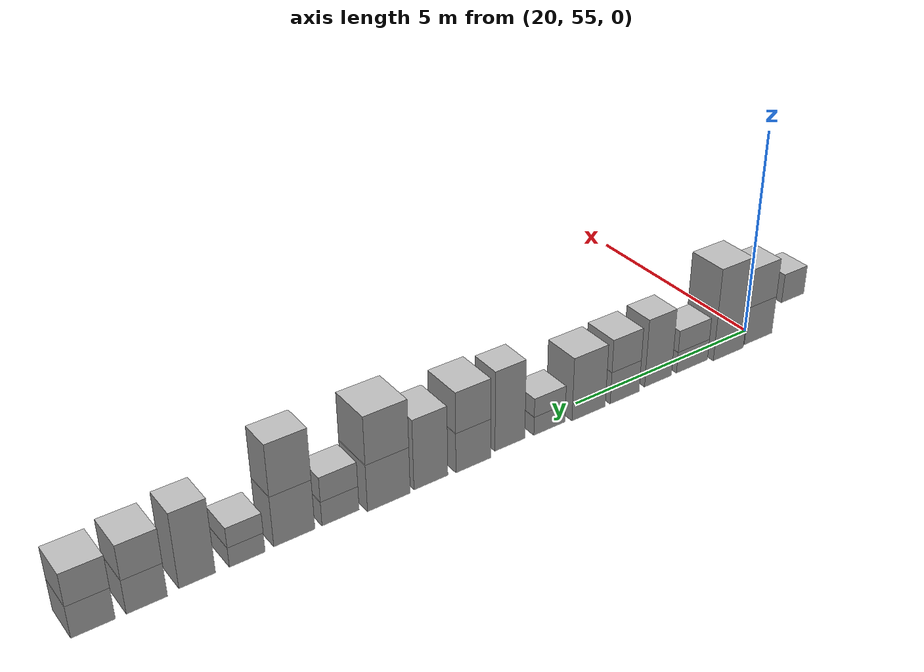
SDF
<sdf version="1.5">
 <world name="default">
  <model name="ground_plane">
   <static>true</static>
   <link name="link">
    <collision name="collision">
     <geometry><plane><normal>0 0 1</normal><size>250 250</size></plane></geometry>
     <surface><friction><ode><mu>1</mu><mu2>1</mu2></ode></friction></surface>
    </collision>
    <visual name="grass">
     <cast_shadows>false</cast_shadows>
     <geometry><mesh><uri>file://grass_plane/meshes/grass_plane.dae</uri></mesh></geometry>
    </visual>
   </link>
  </model>
  <model name="Cardboard_box_top_604">
   <link name="link_0">
    <pose>20 54 0.736954977097 0 0 0</pose>
    <inertial>
     <mass>1</mass>
     <inertia>
      <ixx>0.166667</ixx>
      <ixy>0</ixy>
      <ixz>0</ixz>
      <iyy>0.166667</iyy>
      <iyz>0</iyz>
      <izz>0.166667</izz>
     </inertia>
    </inertial>
    <collision name="collision">
     <geometry>
      <mesh>
       <uri>model://Cardboard_box/meshes/cardboard_box.dae</uri>
       <scale>1.96607956529 1.80147927238 1.84238744274</scale>
      </mesh>
     </geometry>
    </collision>
    <visual name="visual">
     <geometry>
      <mesh>
       <uri>model://Cardboard_box/meshes/cardboard_box.dae</uri>
       <scale>1.96607956529 1.80147927238 1.84238744274</scale>
      </mesh>
     </geometry>
    </visual>
   </link>
   <static>1</static>
  </model>
  <model name="Cardboard_box_605">
   <link name="link_0">
    <pose>20 55 0 0 0 0</pose>
    <inertial>
     <mass>1</mass>
     <inertia>
      <ixx>0.166667</ixx>
      <ixy>0</ixy>
      <ixz>0</ixz>
      <iyy>0.166667</iyy>
      <iyz>0</iyz>
      <izz>0.166667</izz>
     </inertia>
    </inertial>
    <collision name="collision">
     <geometry>
      <mesh>
       <uri>model://Cardboard_box/meshes/cardboard_box.dae</uri>
       <scale>2.01632398014 2.19879689964 2.45306096804</scale>
      </mesh>
     </geometry>
    </collision>
    <visual name="visual">
     <geometry>
      <mesh>
       <uri>model://Cardboard_box/meshes/cardboard_box.dae</uri>
       <scale>2.01632398014 2.19879689964 2.45306096804</scale>
      </mesh>
     </geometry>
    </visual>
   </link>
   <static>1</static>
  </model>
  <model name="Cardboard_box_top_605">
   <link name="link_0">
    <pose>20 55 0.981224387218 0 0 0</pose>
    <inertial>
     <mass>1</mass>
     <inertia>
      <ixx>0.166667</ixx>
      <ixy>0</ixy>
      <ixz>0</ixz>
      <iyy>0.166667</iyy>
      <iyz>0</iyz>
      <izz>0.166667</izz>
     </inertia>
    </inertial>
    <collision name="collision">
     <geometry>
      <mesh>
       <uri>model://Cardboard_box/meshes/cardboard_box.dae</uri>
       <scale>2.01632398014 2.19879689964 2.45306096804</scale>
      </mesh>
     </geometry>
    </collision>
    <visual name="visual">
     <geometry>
      <mesh>
       <uri>model://Cardboard_box/meshes/cardboard_box.dae</uri>
       <scale>2.01632398014 2.19879689964 2.45306096804</scale>
      </mesh>
     </geometry>
    </visual>
   </link>
   <static>1</static>
  </model>
  <model name="Cardboard_box_606">
   <link name="link_0">
    <pose>20 56 0 0 0 0</pose>
    <inertial>
     <mass>1</mass>
     <inertia>
      <ixx>0.166667</ixx>
      <ixy>0</ixy>
      <ixz>0</ixz>
      <iyy>0.166667</iyy>
      <iyz>0</iyz>
      <izz>0.166667</izz>
     </inertia>
    </inertial>
    <collision name="collision">
     <geometry>
      <mesh>
       <uri>model://Cardboard_box/meshes/cardboard_box.dae</uri>
       <scale>2.39003234751 2.32016117571 5.90559905678</scale>
      </mesh>
     </geometry>
    </collision>
    <visual name="visual">
     <geometry>
      <mesh>
       <uri>model://Cardboard_box/meshes/cardboard_box.dae</uri>
       <scale>2.39003234751 2.32016117571 5.90559905678</scale>
      </mesh>
     </geometry>
    </visual>
   </link>
   <static>1</static>
  </model>
  <model name="Cardboard_box_607">
   <link name="link_0">
    <pose>20 57 0 0 0 0</pose>
    <inertial>
     <mass>1</mass>
     <inertia>
      <ixx>0.166667</ixx>
      <ixy>0</ixy>
      <ixz>0</ixz>
      <iyy>0.166667</iyy>
      <iyz>0</iyz>
      <izz>0.166667</izz>
     </inertia>
    </inertial>
    <collision name="collision">
     <geometry>
      <mesh>
       <uri>model://Cardboard_box/meshes/cardboard_box.dae</uri>
       <scale>1.84360082356 2.33156305239 1.36607964084</scale>
      </mesh>
     </geometry>
    </collision>
    <visual name="visual">
     <geometry>
      <mesh>
       <uri>model://Cardboard_box/meshes/cardboard_box.dae</uri>
       <scale>1.84360082356 2.33156305239 1.36607964084</scale>
      </mesh>
     </geometry>
    </visual>
   </link>
   <static>1</static>
  </model>
  <model name="Cardboard_box_top_607">
   <link name="link_0">
    <pose>20 57 0.546431856337 0 0 0</pose>
    <inertial>
     <mass>1</mass>
     <inertia>
      <ixx>0.166667</ixx>
      <ixy>0</ixy>
      <ixz>0</ixz>
      <iyy>0.166667</iyy>
      <iyz>0</iyz>
      <izz>0.166667</izz>
     </inertia>
    </inertial>
    <collision name="collision">
     <geometry>
      <mesh>
       <uri>model://Cardboard_box/meshes/cardboard_box.dae</uri>
       <scale>1.84360082356 2.33156305239 1.36607964084</scale>
      </mesh>
     </geometry>
    </collision>
    <visual name="visual">
     <geometry>
      <mesh>
       <uri>model://Cardboard_box/meshes/cardboard_box.dae</uri>
       <scale>1.84360082356 2.33156305239 1.36607964084</scale>
      </mesh>
     </geometry>
    </visual>
   </link>
   <static>1</static>
  </model>
  <model name="Cardboard_box_608">
   <link name="link_0">
    <pose>20 58 0 0 0 0</pose>
    <inertial>
     <mass>1</mass>
     <inertia>
      <ixx>0.166667</ixx>
      <ixy>0</ixy>
      <ixz>0</ixz>
      <iyy>0.166667</iyy>
      <iyz>0</iyz>
      <izz>0.166667</izz>
     </inertia>
    </inertial>
    <collision name="collision">
     <geometry>
      <mesh>
       <uri>model://Cardboard_box/meshes/cardboard_box.dae</uri>
       <scale>1.85496776008 1.95800882795 4.29942076885</scale>
      </mesh>
     </geometry>
    </collision>
    <visual name="visual">
     <geometry>
      <mesh>
       <uri>model://Cardboard_box/meshes/cardboard_box.dae</uri>
       <scale>1.85496776008 1.95800882795 4.29942076885</scale>
      </mesh>
     </geometry>
    </visual>
   </link>
   <static>1</static>
  </model>
  <model name="Cardboard_box_609">
   <link name="link_0">
    <pose>20 59 0 0 0 0</pose>
    <inertial>
     <mass>1</mass>
     <inertia>
      <ixx>0.166667</ixx>
      <ixy>0</ixy>
      <ixz>0</ixz>
      <iyy>0.166667</iyy>
      <iyz>0</iyz>
      <izz>0.166667</izz>
     </inertia>
    </inertial>
    <collision name="collision">
     <geometry>
      <mesh>
       <uri>model://Cardboard_box/meshes/cardboard_box.dae</uri>
       <scale>2.14618479516 2.04663500914 2.02100210984</scale>
      </mesh>
     </geometry>
    </collision>
    <visual name="visual">
     <geometry>
      <mesh>
       <uri>model://Cardboard_box/meshes/cardboard_box.dae</uri>
       <scale>2.14618479516 2.04663500914 2.02100210984</scale>
      </mesh>
     </geometry>
    </visual>
   </link>
   <static>1</static>
  </model>
  <model name="Cardboard_box_top_609">
   <link name="link_0">
    <pose>20 59 0.808400843937 0 0 0</pose>
    <inertial>
     <mass>1</mass>
     <inertia>
      <ixx>0.166667</ixx>
      <ixy>0</ixy>
      <ixz>0</ixz>
      <iyy>0.166667</iyy>
      <iyz>0</iyz>
      <izz>0.166667</izz>
     </inertia>
    </inertial>
    <collision name="collision">
     <geometry>
      <mesh>
       <uri>model://Cardboard_box/meshes/cardboard_box.dae</uri>
       <scale>2.14618479516 2.04663500914 2.02100210984</scale>
      </mesh>
     </geometry>
    </collision>
    <visual name="visual">
     <geometry>
      <mesh>
       <uri>model://Cardboard_box/meshes/cardboard_box.dae</uri>
       <scale>2.14618479516 2.04663500914 2.02100210984</scale>
      </mesh>
     </geometry>
    </visual>
   </link>
   <static>1</static>
  </model>
  <model name="Cardboard_box_610">
   <link name="link_0">
    <pose>20 60 0 0 0 0</pose>
    <inertial>
     <mass>1</mass>
     <inertia>
      <ixx>0.166667</ixx>
      <ixy>0</ixy>
      <ixz>0</ixz>
      <iyy>0.166667</iyy>
      <iyz>0</iyz>
      <izz>0.166667</izz>
     </inertia>
    </inertial>
    <collision name="collision">
     <geometry>
      <mesh>
       <uri>model://Cardboard_box/meshes/cardboard_box.dae</uri>
       <scale>2.19470734684 2.27012652009 3.93907148978</scale>
      </mesh>
     </geometry>
    </collision>
    <visual name="visual">
     <geometry>
      <mesh>
       <uri>model://Cardboard_box/meshes/cardboard_box.dae</uri>
       <scale>2.19470734684 2.27012652009 3.93907148978</scale>
      </mesh>
     </geometry>
    </visual>
   </link>
   <static>1</static>
  </model>
  <model name="Cardboard_box_611">
   <link name="link_0">
    <pose>20 61 0 0 0 0</pose>
    <inertial>
     <mass>1</mass>
     <inertia>
      <ixx>0.166667</ixx>
      <ixy>0</ixy>
      <ixz>0</ixz>
      <iyy>0.166667</iyy>
      <iyz>0</iyz>
      <izz>0.166667</izz>
     </inertia>
    </inertial>
    <collision name="collision">
     <geometry>
      <mesh>
       <uri>model://Cardboard_box/meshes/cardboard_box.dae</uri>
       <scale>1.90186253939 2.05237589071 1.14566352119</scale>
      </mesh>
     </geometry>
    </collision>
    <visual name="visual">
     <geometry>
      <mesh>
       <uri>model://Cardboard_box/meshes/cardboard_box.dae</uri>
       <scale>1.90186253939 2.05237589071 1.14566352119</scale>
      </mesh>
     </geometry>
    </visual>
   </link>
   <static>1</static>
  </model>
  <model name="Cardboard_box_top_611">
   <link name="link_0">
    <pose>20 61 0.458265408477 0 0 0</pose>
    <inertial>
     <mass>1</mass>
     <inertia>
      <ixx>0.166667</ixx>
      <ixy>0</ixy>
      <ixz>0</ixz>
      <iyy>0.166667</iyy>
      <iyz>0</iyz>
      <izz>0.166667</izz>
     </inertia>
    </inertial>
    <collision name="collision">
     <geometry>
      <mesh>
       <uri>model://Cardboard_box/meshes/cardboard_box.dae</uri>
       <scale>1.90186253939 2.05237589071 1.14566352119</scale>
      </mesh>
     </geometry>
    </collision>
    <visual name="visual">
     <geometry>
      <mesh>
       <uri>model://Cardboard_box/meshes/cardboard_box.dae</uri>
       <scale>1.90186253939 2.05237589071 1.14566352119</scale>
      </mesh>
     </geometry>
    </visual>
   </link>
   <static>1</static>
  </model>
  <model name="Cardboard_box_612">
   <link name="link_0">
    <pose>20 62 0 0 0 0</pose>
    <inertial>
     <mass>1</mass>
     <inertia>
      <ixx>0.166667</ixx>
      <ixy>0</ixy>
      <ixz>0</ixz>
      <iyy>0.166667</iyy>
      <iyz>0</iyz>
      <izz>0.166667</izz>
     </inertia>
    </inertial>
    <collision name="collision">
     <geometry>
      <mesh>
       <uri>model://Cardboard_box/meshes/cardboard_box.dae</uri>
       <scale>1.76700883504 1.9027436537 4.8937249858</scale>
      </mesh>
     </geometry>
    </collision>
    <visual name="visual">
     <geometry>
      <mesh>
       <uri>model://Cardboard_box/meshes/cardboard_box.dae</uri>
       <scale>1.76700883504 1.9027436537 4.8937249858</scale>
      </mesh>
     </geometry>
    </visual>
   </link>
   <static>1</static>
  </model>
  <model name="Cardboard_box_613">
   <link name="link_0">
    <pose>20 63 0 0 0 0</pose>
    <inertial>
     <mass>1</mass>
     <inertia>
      <ixx>0.166667</ixx>
      <ixy>0</ixy>
      <ixz>0</ixz>
      <iyy>0.166667</iyy>
      <iyz>0</iyz>
      <izz>0.166667</izz>
     </inertia>
    </inertial>
    <collision name="collision">
     <geometry>
      <mesh>
       <uri>model://Cardboard_box/meshes/cardboard_box.dae</uri>
       <scale>2.40601959532 2.14132616024 2.43127423748</scale>
      </mesh>
     </geometry>
    </collision>
    <visual name="visual">
     <geometry>
      <mesh>
       <uri>model://Cardboard_box/meshes/cardboard_box.dae</uri>
       <scale>2.40601959532 2.14132616024 2.43127423748</scale>
      </mesh>
     </geometry>
    </visual>
   </link>
   <static>1</static>
  </model>
  <model name="Cardboard_box_top_613">
   <link name="link_0">
    <pose>20 63 0.97250969499 0 0 0</pose>
    <inertial>
     <mass>1</mass>
     <inertia>
      <ixx>0.166667</ixx>
      <ixy>0</ixy>
      <ixz>0</ixz>
      <iyy>0.166667</iyy>
      <iyz>0</iyz>
      <izz>0.166667</izz>
     </inertia>
    </inertial>
    <collision name="collision">
     <geometry>
      <mesh>
       <uri>model://Cardboard_box/meshes/cardboard_box.dae</uri>
       <scale>2.40601959532 2.14132616024 2.43127423748</scale>
      </mesh>
     </geometry>
    </collision>
    <visual name="visual">
     <geometry>
      <mesh>
       <uri>model://Cardboard_box/meshes/cardboard_box.dae</uri>
       <scale>2.40601959532 2.14132616024 2.43127423748</scale>
      </mesh>
     </geometry>
    </visual>
   </link>
   <static>1</static>
  </model>
  <model name="Cardboard_box_614">
   <link name="link_0">
    <pose>20 64 0 0 0 0</pose>
    <inertial>
     <mass>1</mass>
     <inertia>
      <ixx>0.166667</ixx>
      <ixy>0</ixy>
      <ixz>0</ixz>
      <iyy>0.166667</iyy>
      <iyz>0</iyz>
      <izz>0.166667</izz>
     </inertia>
    </inertial>
    <collision name="collision">
     <geometry>
      <mesh>
       <uri>model://Cardboard_box/meshes/cardboard_box.dae</uri>
       <scale>2.2519793611 2.01899430972 4.23079400214</scale>
      </mesh>
     </geometry>
    </collision>
    <visual name="visual">
     <geometry>
      <mesh>
       <uri>model://Cardboard_box/meshes/cardboard_box.dae</uri>
       <scale>2.2519793611 2.01899430972 4.23079400214</scale>
      </mesh>
     </geometry>
    </visual>
   </link>
   <static>1</static>
  </model>
  <model name="Cardboard_box_615">
   <link name="link_0">
    <pose>20 65 0 0 0 0</pose>
    <inertial>
     <mass>1</mass>
     <inertia>
      <ixx>0.166667</ixx>
      <ixy>0</ixy>
      <ixz>0</ixz>
      <iyy>0.166667</iyy>
      <iyz>0</iyz>
      <izz>0.166667</izz>
     </inertia>
    </inertial>
    <collision name="collision">
     <geometry>
      <mesh>
       <uri>model://Cardboard_box/meshes/cardboard_box.dae</uri>
       <scale>2.44667654949 2.45714902443 2.80874775185</scale>
      </mesh>
     </geometry>
    </collision>
    <visual name="visual">
     <geometry>
      <mesh>
       <uri>model://Cardboard_box/meshes/cardboard_box.dae</uri>
       <scale>2.44667654949 2.45714902443 2.80874775185</scale>
      </mesh>
     </geometry>
    </visual>
   </link>
   <static>1</static>
  </model>
  <model name="Cardboard_box_top_615">
   <link name="link_0">
    <pose>20 65 1.12349910074 0 0 0</pose>
    <inertial>
     <mass>1</mass>
     <inertia>
      <ixx>0.166667</ixx>
      <ixy>0</ixy>
      <ixz>0</ixz>
      <iyy>0.166667</iyy>
      <iyz>0</iyz>
      <izz>0.166667</izz>
     </inertia>
    </inertial>
    <collision name="collision">
     <geometry>
      <mesh>
       <uri>model://Cardboard_box/meshes/cardboard_box.dae</uri>
       <scale>2.44667654949 2.45714902443 2.80874775185</scale>
      </mesh>
     </geometry>
    </collision>
    <visual name="visual">
     <geometry>
      <mesh>
       <uri>model://Cardboard_box/meshes/cardboard_box.dae</uri>
       <scale>2.44667654949 2.45714902443 2.80874775185</scale>
      </mesh>
     </geometry>
    </visual>
   </link>
   <static>1</static>
  </model>
  <model name="Cardboard_box_616">
   <link name="link_0">
    <pose>20 66 0 0 0 0</pose>
    <inertial>
     <mass>1</mass>
     <inertia>
      <ixx>0.166667</ixx>
      <ixy>0</ixy>
      <ixz>0</ixz>
      <iyy>0.166667</iyy>
      <iyz>0</iyz>
      <izz>0.166667</izz>
     </inertia>
    </inertial>
    <collision name="collision">
     <geometry>
      <mesh>
       <uri>model://Cardboard_box/meshes/cardboard_box.dae</uri>
       <scale>1.74908755513 2.06319530047 1.44473320043</scale>
      </mesh>
     </geometry>
    </collision>
    <visual name="visual">
     <geometry>
      <mesh>
       <uri>model://Cardboard_box/meshes/cardboard_box.dae</uri>
       <scale>1.74908755513 2.06319530047 1.44473320043</scale>
      </mesh>
     </geometry>
    </visual>
   </link>
   <static>1</static>
  </model>
  <model name="Cardboard_box_top_616">
   <link name="link_0">
    <pose>20 66 0.57789328017 0 0 0</pose>
    <inertial>
     <mass>1</mass>
     <inertia>
      <ixx>0.166667</ixx>
      <ixy>0</ixy>
      <ixz>0</ixz>
      <iyy>0.166667</iyy>
      <iyz>0</iyz>
      <izz>0.166667</izz>
     </inertia>
    </inertial>
    <collision name="collision">
     <geometry>
      <mesh>
       <uri>model://Cardboard_box/meshes/cardboard_box.dae</uri>
       <scale>1.74908755513 2.06319530047 1.44473320043</scale>
      </mesh>
     </geometry>
    </collision>
    <visual name="visual">
     <geometry>
      <mesh>
       <uri>model://Cardboard_box/meshes/cardboard_box.dae</uri>
       <scale>1.74908755513 2.06319530047 1.44473320043</scale>
      </mesh>
     </geometry>
    </visual>
   </link>
   <static>1</static>
  </model>
  <model name="Cardboard_box_617">
   <link name="link_0">
    <pose>20 67 0 0 0 0</pose>
    <inertial>
     <mass>1</mass>
     <inertia>
      <ixx>0.166667</ixx>
      <ixy>0</ixy>
      <ixz>0</ixz>
      <iyy>0.166667</iyy>
      <iyz>0</iyz>
      <izz>0.166667</izz>
     </inertia>
    </inertial>
    <collision name="collision">
     <geometry>
      <mesh>
       <uri>model://Cardboard_box/meshes/cardboard_box.dae</uri>
       <scale>1.74489117357 2.20642668271 2.96500798855</scale>
      </mesh>
     </geometry>
    </collision>
    <visual name="visual">
     <geometry>
      <mesh>
       <uri>model://Cardboard_box/meshes/cardboard_box.dae</uri>
       <scale>1.74489117357 2.20642668271 2.96500798855</scale>
      </mesh>
     </geometry>
    </visual>
   </link>
   <static>1</static>
  </model>
  <model name="Cardboard_box_top_617">
   <link name="link_0">
    <pose>20 67 1.18600319542 0 0 0</pose>
    <inertial>
     <mass>1</mass>
     <inertia>
      <ixx>0.166667</ixx>
      <ixy>0</ixy>
      <ixz>0</ixz>
      <iyy>0.166667</iyy>
      <iyz>0</iyz>
      <izz>0.166667</izz>
     </inertia>
    </inertial>
    <collision name="collision">
     <geometry>
      <mesh>
       <uri>model://Cardboard_box/meshes/cardboard_box.dae</uri>
       <scale>1.74489117357 2.20642668271 2.96500798855</scale>
      </mesh>
     </geometry>
    </collision>
    <visual name="visual">
     <geometry>
      <mesh>
       <uri>model://Cardboard_box/meshes/cardboard_box.dae</uri>
       <scale>1.74489117357 2.20642668271 2.96500798855</scale>
      </mesh>
     </geometry>
    </visual>
   </link>
   <static>1</static>
  </model>
  <model name="Cardboard_box_618">
   <link name="link_0">
    <pose>20 68 0 0 0 0</pose>
    <inertial>
     <mass>1</mass>
     <inertia>
      <ixx>0.166667</ixx>
      <ixy>0</ixy>
      <ixz>0</ixz>
      <iyy>0.166667</iyy>
      <iyz>0</iyz>
      <izz>0.166667</izz>
     </inertia>
    </inertial>
    <collision name="collision">
     <geometry>
      <mesh>
       <uri>model://Cardboard_box/meshes/cardboard_box.dae</uri>
       <scale>1.901727759 1.84411083704 1.15332244587</scale>
      </mesh>
     </geometry>
    </collision>
    <visual name="visual">
     <geometry>
      <mesh>
       <uri>model://Cardboard_box/meshes/cardboard_box.dae</uri>
       <scale>1.901727759 1.84411083704 1.15332244587</scale>
      </mesh>
     </geometry>
    </visual>
   </link>
   <static>1</static>
  </model>
  <model name="Cardboard_box_top_618">
   <link name="link_0">
    <pose>20 68 0.461328978349 0 0 0</pose>
    <inertial>
     <mass>1</mass>
     <inertia>
      <ixx>0.166667</ixx>
      <ixy>0</ixy>
      <ixz>0</ixz>
      <iyy>0.166667</iyy>
      <iyz>0</iyz>
      <izz>0.166667</izz>
     </inertia>
    </inertial>
    <collision name="collision">
     <geometry>
      <mesh>
       <uri>model://Cardboard_box/meshes/cardboard_box.dae</uri>
       <scale>1.901727759 1.84411083704 1.15332244587</scale>
      </mesh>
     </geometry>
    </collision>
    <visual name="visual">
     <geometry>
      <mesh>
       <uri>model://Cardboard_box/meshes/cardboard_box.dae</uri>
       <scale>1.901727759 1.84411083704 1.15332244587</scale>
      </mesh>
     </geometry>
    </visual>
   </link>
   <static>1</static>
  </model>
  <model name="Cardboard_box_619">
   <link name="link_0">
    <pose>20 69 0 0 0 0</pose>
    <inertial>
     <mass>1</mass>
     <inertia>
      <ixx>0.166667</ixx>
      <ixy>0</ixy>
      <ixz>0</ixz>
      <iyy>0.166667</iyy>
      <iyz>0</iyz>
      <izz>0.166667</izz>
     </inertia>
    </inertial>
    <collision name="collision">
     <geometry>
      <mesh>
       <uri>model://Cardboard_box/meshes/cardboard_box.dae</uri>
       <scale>1.83351700731 1.82183531353 4.36486716345</scale>
      </mesh>
     </geometry>
    </collision>
    <visual name="visual">
     <geometry>
      <mesh>
       <uri>model://Cardboard_box/meshes/cardboard_box.dae</uri>
       <scale>1.83351700731 1.82183531353 4.36486716345</scale>
      </mesh>
     </geometry>
    </visual>
   </link>
   <static>1</static>
  </model>
  <model name="Cardboard_box_620">
   <link name="link_0">
    <pose>20 70 0 0 0 0</pose>
    <inertial>
     <mass>1</mass>
     <inertia>
      <ixx>0.166667</ixx>
      <ixy>0</ixy>
      <ixz>0</ixz>
      <iyy>0.166667</iyy>
      <iyz>0</iyz>
      <izz>0.166667</izz>
     </inertia>
    </inertial>
    <collision name="collision">
     <geometry>
      <mesh>
       <uri>model://Cardboard_box/meshes/cardboard_box.dae</uri>
       <scale>2.15128175669 1.96918593358 1.96527988811</scale>
      </mesh>
     </geometry>
    </collision>
    <visual name="visual">
     <geometry>
      <mesh>
       <uri>model://Cardboard_box/meshes/cardboard_box.dae</uri>
       <scale>2.15128175669 1.96918593358 1.96527988811</scale>
      </mesh>
     </geometry>
    </visual>
   </link>
   <static>1</static>
  </model>
  <model name="Cardboard_box_top_620">
   <link name="link_0">
    <pose>20 70 0.786111955246 0 0 0</pose>
    <inertial>
     <mass>1</mass>
     <inertia>
      <ixx>0.166667</ixx>
      <ixy>0</ixy>
      <ixz>0</ixz>
      <iyy>0.166667</iyy>
      <iyz>0</iyz>
      <izz>0.166667</izz>
     </inertia>
    </inertial>
    <collision name="collision">
     <geometry>
      <mesh>
       <uri>model://Cardboard_box/meshes/cardboard_box.dae</uri>
       <scale>2.15128175669 1.96918593358 1.96527988811</scale>
      </mesh>
     </geometry>
    </collision>
    <visual name="visual">
     <geometry>
      <mesh>
       <uri>model://Cardboard_box/meshes/cardboard_box.dae</uri>
       <scale>2.15128175669 1.96918593358 1.96527988811</scale>
      </mesh>
     </geometry>
    </visual>
   </link>
   <static>1</static>
  </model>
  <model name="Cardboard_box_621">
   <link name="link_0">
    <pose>20 71 0 0 0 0</pose>
    <inertial>
     <mass>1</mass>
     <inertia>
      <ixx>0.166667</ixx>
      <ixy>0</ixy>
      <ixz>0</ixz>
      <iyy>0.166667</iyy>
      <iyz>0</iyz>
      <izz>0.166667</izz>
     </inertia>
    </inertial>
    <collision name="collision">
     <geometry>
      <mesh>
       <uri>model://Cardboard_box/meshes/cardboard_box.dae</uri>
       <scale>2.14722095084 2.05173750902 1.82973393241</scale>
      </mesh>
     </geometry>
    </collision>
    <visual name="visual">
     <geometry>
      <mesh>
       <uri>model://Cardboard_box/meshes/cardboard_box.dae</uri>
       <scale>2.14722095084 2.05173750902 1.82973393241</scale>
      </mesh>
     </geometry>
    </visual>
   </link>
   <static>1</static>
  </model>
  <model name="Cardboard_box_top_621">
   <link name="link_0">
    <pose>20 71 0.731893572962 0 0 0</pose>
    <inertial>
     <mass>1</mass>
     <inertia>
      <ixx>0.166667</ixx>
      <ixy>0</ixy>
      <ixz>0</ixz>
      <iyy>0.166667</iyy>
      <iyz>0</iyz>
      <izz>0.166667</izz>
     </inertia>
    </inertial>
    <collision name="collision">
     <geometry>
      <mesh>
       <uri>model://Cardboard_box/meshes/cardboard_box.dae</uri>
       <scale>2.14722095084 2.05173750902 1.82973393241</scale>
      </mesh>
     </geometry>
    </collision>
    <visual name="visual">
     <geometry>
      <mesh>
       <uri>model://Cardboard_box/meshes/cardboard_box.dae</uri>
       <scale>2.14722095084 2.05173750902 1.82973393241</scale>
      </mesh>
     </geometry>
    </visual>
   </link>
   <static>1</static>
  </model>
 </world>
</sdf>
